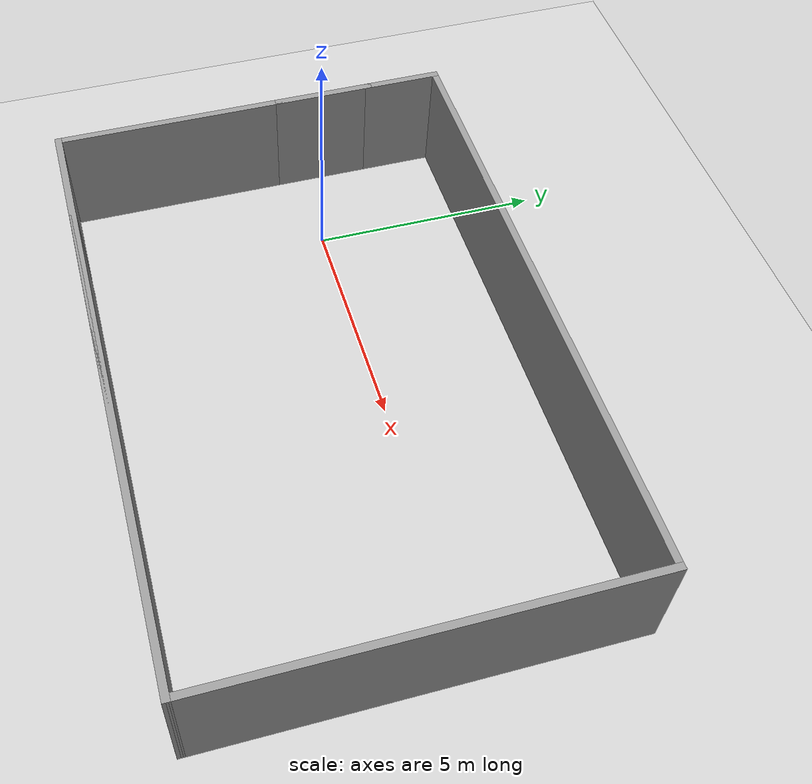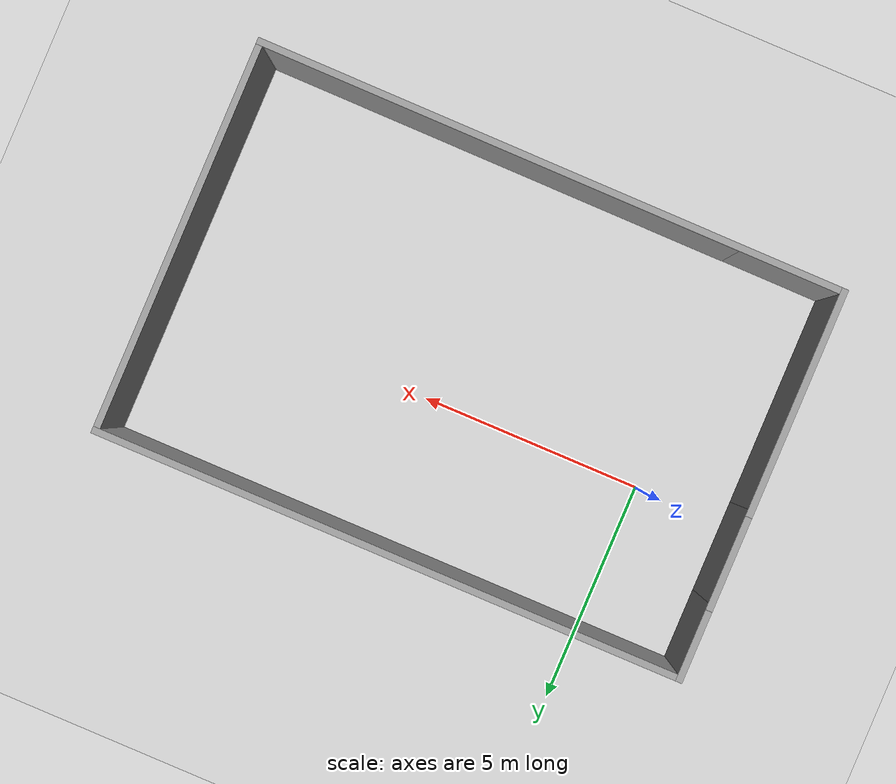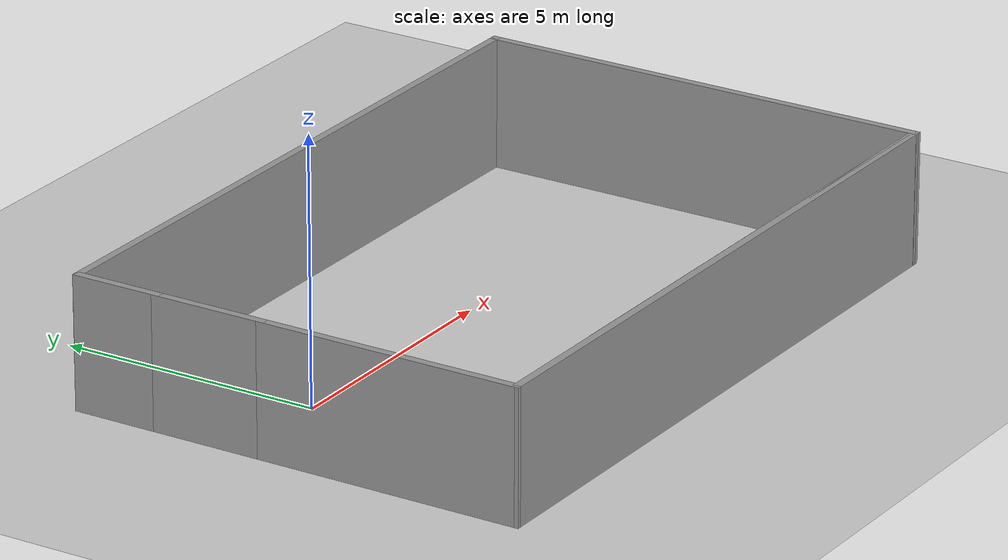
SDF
<sdf version="1.6">
 <world name="default">
  <light name="sun" type="directional">
   <pose>0 0 10 0 -0 0</pose>
   <diffuse>0.8 0.8 0.8 1</diffuse>
   <specular>0.2 0.2 0.2 1</specular>
   <attenuation>
    <range>1000</range>
    <constant>0.9</constant>
    <linear>0.01</linear>
    <quadratic>0.001</quadratic>
   </attenuation>
   <direction>-0.5 0.1 -0.9</direction>
  </light>
  <model name="ground_plane">
   <static>1</static>
   <link name="link">
    <collision name="collision">
     <geometry><plane><normal>0 0 1</normal><size>100 100</size></plane></geometry>
     <surface>
      <contact><collide_bitmask>65535</collide_bitmask></contact>
      <friction><ode><mu>100</mu><mu2>50</mu2></ode></friction>
     </surface>
    </collision>
    <visual name="visual">
     <cast_shadows>0</cast_shadows>
     <geometry><plane><normal>0 0 1</normal><size>100 100</size></plane></geometry>
     <material>
      <script><uri>file://media/materials/scripts/gazebo.material</uri><name>Gazebo/Grey</name></script>
     </material>
    </visual>
   </link>
  </model>
  <gravity>0 0 -9.8</gravity>
  <magnetic_field>6e-06 2.3e-05 -4.2e-05</magnetic_field>
  <atmosphere type="adiabatic"/>
  <physics name="default_physics" default="0" type="ode">
   <max_step_size>0.001</max_step_size>
   <real_time_factor>1</real_time_factor>
   <real_time_update_rate>1000</real_time_update_rate>
  </physics>
  <scene><ambient>0.4 0.4 0.4 1</ambient><background>0.7 0.7 0.7 1</background><shadows>1</shadows></scene>
  <audio><device>default</device></audio>
  <spherical_coordinates>
   <surface_model>EARTH_WGS84</surface_model>
   <latitude_deg>0</latitude_deg>
   <longitude_deg>0</longitude_deg>
   <elevation>0</elevation>
   <heading_deg>0</heading_deg>
  </spherical_coordinates>
  <model name="space">
   <pose>4.42368 -1.1121 0 0 -0 0</pose>
   <link name="Wall_0">
    <collision name="Wall_0_Collision">
     <geometry><box><size>5.1171 0.15 2.5</size></box></geometry>
     <pose>0 0 1.25 0 -0 0</pose>
    </collision>
    <visual name="Wall_0_Visual">
     <pose>0 0 1.25 0 -0 0</pose>
     <geometry><box><size>5.1171 0.15 2.5</size></box></geometry>
     <material>
      <script><uri>file://media/materials/scripts/gazebo.material</uri><name>Gazebo/Grey</name></script>
      <ambient>1 1 1 1</ambient>
     </material>
     <meta><layer>0</layer></meta>
    </visual>
    <pose>-6.55001 -1.82484 0 0 -0 1.5708</pose>
   </link>
   <link name="Wall_1">
    <collision name="Wall_1_Collision">
     <geometry><box><size>2.25 0.15 2.5</size></box></geometry>
     <pose>0 0 1.25 0 -0 0</pose>
    </collision>
    <visual name="Wall_1_Visual">
     <pose>0 0 1.25 0 -0 0</pose>
     <geometry><box><size>2.25 0.15 2.5</size></box></geometry>
     <material>
      <script><uri>file://media/materials/scripts/gazebo.material</uri><name>Gazebo/Grey</name></script>
      <ambient>1 1 1 1</ambient>
     </material>
     <meta><layer>0</layer></meta>
    </visual>
    <pose>-6.55001 1.70871 0 0 -0 1.5708</pose>
   </link>
   <link name="Wall_10">
    <collision name="Wall_10_Collision">
     <geometry><box><size>13.2501 0.15 2.5</size></box></geometry>
     <pose>0 0 1.25 0 -0 0</pose>
    </collision>
    <visual name="Wall_10_Visual">
     <pose>0 0 1.25 0 -0 0</pose>
     <geometry><box><size>13.2501 0.15 2.5</size></box></geometry>
     <material>
      <script><uri>file://media/materials/scripts/gazebo.material</uri><name>Gazebo/Grey</name></script>
      <ambient>1 1 1 1</ambient>
     </material>
     <meta><layer>0</layer></meta>
    </visual>
    <pose>-1.4e-05 -4.33339 0 0 -0 3.13778</pose>
   </link>
   <link name="Wall_2">
    <collision name="Wall_2_Collision">
     <geometry><box><size>1.75 0.15 2.5</size></box></geometry>
     <pose>0 0 1.25 0 -0 0</pose>
    </collision>
    <visual name="Wall_2_Visual">
     <pose>0 0 1.25 0 -0 0</pose>
     <geometry><box><size>1.75 0.15 2.5</size></box></geometry>
     <material>
      <script><uri>file://media/materials/scripts/gazebo.material</uri><name>Gazebo/Grey</name></script>
      <ambient>1 1 1 1</ambient>
     </material>
     <meta><layer>0</layer></meta>
    </visual>
    <pose>-6.55001 3.55871 0 0 -0 1.5708</pose>
   </link>
   <link name="Wall_3">
    <collision name="Wall_3_Collision">
     <geometry><box><size>13.25 0.15 2.5</size></box></geometry>
     <pose>0 0 1.25 0 -0 0</pose>
    </collision>
    <visual name="Wall_3_Visual">
     <pose>0 0 1.25 0 -0 0</pose>
     <geometry><box><size>13.25 0.15 2.5</size></box></geometry>
     <material>
      <script><uri>file://media/materials/scripts/gazebo.material</uri><name>Gazebo/Grey</name></script>
      <ambient>1 1 1 1</ambient>
     </material>
     <meta><layer>0</layer></meta>
    </visual>
    <pose>-1.4e-05 4.35871 0 0 -0 0</pose>
   </link>
   <link name="Wall_4">
    <collision name="Wall_4_Collision">
     <geometry><box><size>8.8671 0.15 2.5</size></box></geometry>
     <pose>0 0 1.25 0 -0 0</pose>
    </collision>
    <visual name="Wall_4_Visual">
     <pose>0 0 1.25 0 -0 0</pose>
     <geometry><box><size>8.8671 0.15 2.5</size></box></geometry>
     <material>
      <script><uri>file://media/materials/scripts/gazebo.material</uri><name>Gazebo/Grey</name></script>
      <ambient>1 1 1 1</ambient>
     </material>
     <meta><layer>0</layer></meta>
    </visual>
    <pose>6.54999 0.000157 0 0 -0 -1.5708</pose>
   </link>
   <link name="Wall_9">
    <collision name="Wall_9_Collision">
     <geometry><box><size>10.8526 0.15 2.5</size></box></geometry>
     <pose>0 0 1.25 0 -0 0</pose>
    </collision>
    <visual name="Wall_9_Visual">
     <pose>0 0 1.25 0 -0 0</pose>
     <geometry><box><size>10.8526 0.15 2.5</size></box></geometry>
     <material>
      <script><uri>file://media/materials/scripts/gazebo.material</uri><name>Gazebo/Grey</name></script>
      <ambient>1 1 1 1</ambient>
     </material>
     <meta><layer>0</layer></meta>
    </visual>
    <pose>1.19872 -4.3358 0 0 -0 -0.004223</pose>
   </link>
   <static>1</static>
  </model>
 </world>
</sdf>
